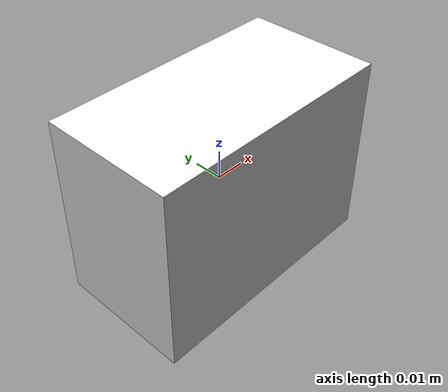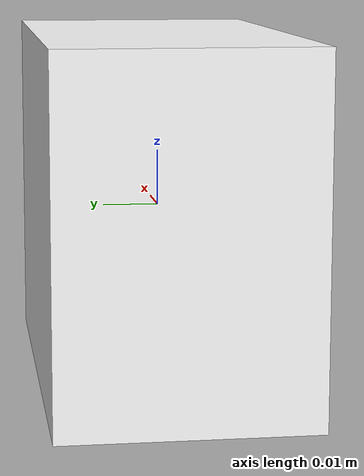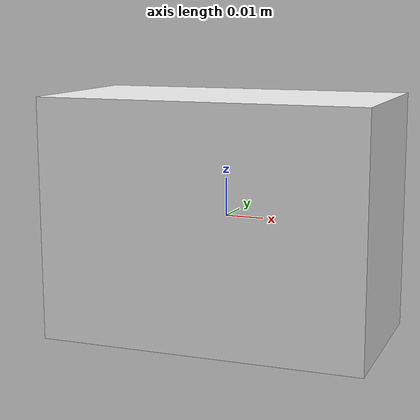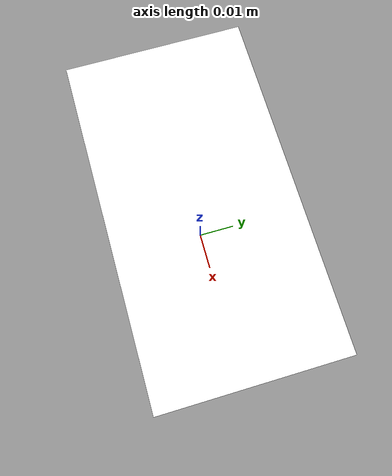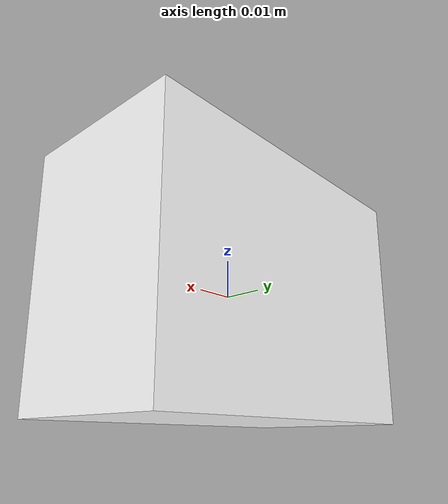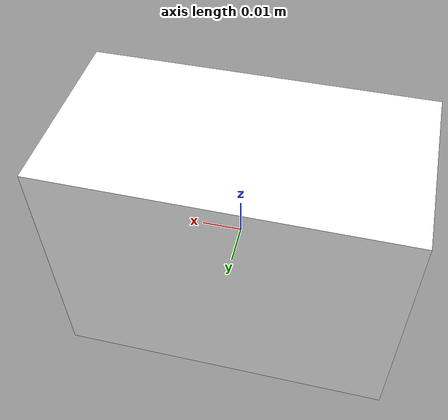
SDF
<?xml version='1.0'?>
<sdf version='1.7'>
  <model name='pic_23 175160690747911'>
    <link name='link_0'>
      <inertial>
        <mass>1.0</mass>
        <inertia>
          <ixx>0.166667</ixx><ixy>0</ixy><ixz>0</ixz>
          <iyy>0.166667</iyy><iyz>0</iyz><izz>0.166667</izz>
        </inertia>
        <pose>0 0 0 0 -0 0</pose>
      </inertial>
      <pose>0 0 0 0 -0 0</pose>
      <gravity>1</gravity>
      <self_collide>0</self_collide>
      <kinematic>0</kinematic>
      <enable_wind>0</enable_wind>
      <visual name='visual'>
        <pose>0 0 0 0 -0 0</pose>
        <geometry>
          <mesh>
            <uri>model://pic_23 175160690747911/meshes/box_0p17x0p1263x0p09.dae</uri>
            <scale>1 1 1</scale>
          </mesh>
        </geometry>
        <material><shader type='pixel'><normal_map>__default__</normal_map></shader>
        <emissive>0 0 0 1</emissive></material>
        <transparency>0</transparency>
        <cast_shadows>1</cast_shadows>
      </visual>
      <collision name='collision'>
        <laser_retro>0</laser_retro><max_contacts>10</max_contacts>
        <pose>0 0 0 0 -0 0</pose>
        <geometry>
          <mesh>
            <uri>model://pic_23 175160690747911/meshes/box_0p17x0p1263x0p09.dae</uri>
            <scale>1 1 1</scale>
          </mesh>
        </geometry>
        <!-- surface/friction/bounce omitted for brevity -->
      </collision>
    </link>
    <static>0</static>
    <allow_auto_disable>1</allow_auto_disable>
  </model>
</sdf>
